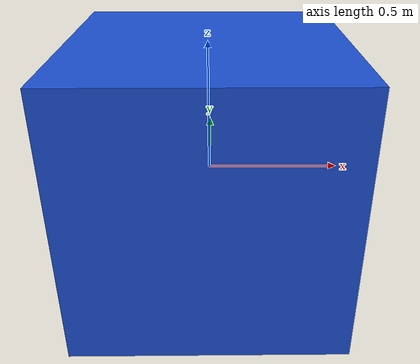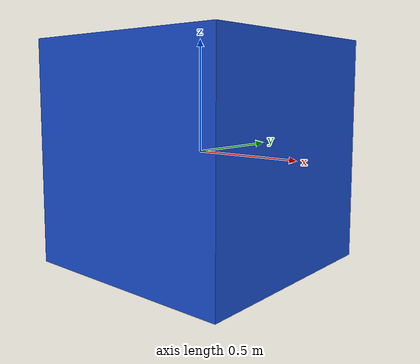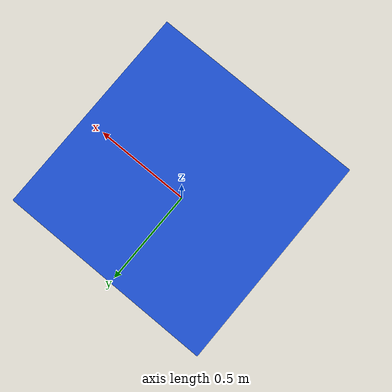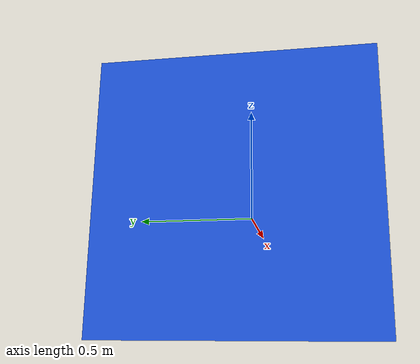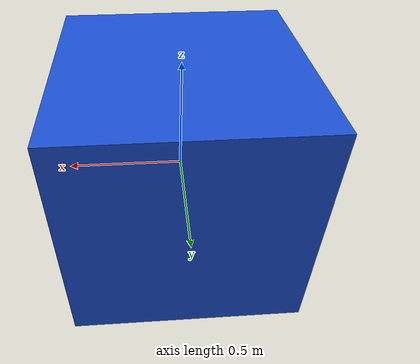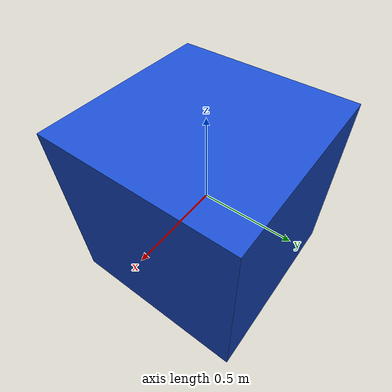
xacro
<?xml version="1.0"?>
<robot name="usv" xmlns:xacro="http://www.ros.org/wiki/xacro">

  <link name="base_footprint"/>

  <joint name="base_footprint_joint" type="fixed">
    <parent link="base_footprint"/>
    <child  link="base_link"/>
    <origin xyz="0 0 0" rpy="0 0 0"/>
  </joint>

  <link name="base_link">
    <visual>
      <geometry>
        <!-- PRIVATE DATA REMOVED: real hull size (L W H, metres). -->
        <box size="1.0 1.0 1.0"/>   <!-- placeholder -->
      </geometry>
      <material name="hull_blue">
        <color rgba="0.1 0.3 0.8 1.0"/>
      </material>
    </visual>
    <collision>
      <geometry>
        <box size="1.0 1.0 1.0"/>   <!-- placeholder -->
      </geometry>
    </collision>
    <inertial>
      <!-- PRIVATE DATA REMOVED: real mass (kg) and inertia tensor. -->
      <mass value="1.0"/>           <!-- placeholder -->
      <inertia ixx="1.0" ixy="0" ixz="0"
               iyy="1.0" iyz="0"
               izz="1.0"/>
    </inertial>
  </link>

  <!-- ─── LiDAR ─────────────────────────────────────────────────────────── -->
  <joint name="lidar_joint" type="fixed">
    <parent link="base_link"/>
    <child  link="lidar_link"/>
    <!-- PRIVATE DATA REMOVED: real LiDAR mount offset (x y z, metres). -->
    <origin xyz="0.0 0.0 0.0" rpy="0 0 0"/>   <!-- placeholder -->
  </joint>

  <link name="lidar_link">
    <visual>
      <geometry><cylinder radius="0.04" length="0.08"/></geometry>
      <material name="lidar_black"><color rgba="0.1 0.1 0.1 1.0"/></material>
    </visual>
  </link>

  <!-- ─── Camera ────────────────────────────────────────────────────────── -->
  <joint name="camera_joint" type="fixed">
    <parent link="base_link"/>
    <child  link="camera_link"/>
    <!-- PRIVATE DATA REMOVED: real camera mount offset (x y z, metres). -->
    <origin xyz="0.0 0.0 0.0" rpy="0 0 0"/>   <!-- placeholder -->
  </joint>

  <link name="camera_link">
    <visual>
      <geometry><box size="0.03 0.09 0.03"/></geometry>
      <material name="cam_grey"><color rgba="0.5 0.5 0.5 1.0"/></material>
    </visual>
  </link>

  <!-- Camera optical frame (ROS convention: x=right, y=down, z=forward) -->
  <joint name="camera_optical_joint" type="fixed">
    <parent link="camera_link"/>
    <child  link="camera_optical_frame"/>
    <origin xyz="0 0 0" rpy="-1.5707963 0 -1.5707963"/>
  </joint>

  <link name="camera_optical_frame"/>

</robot>
